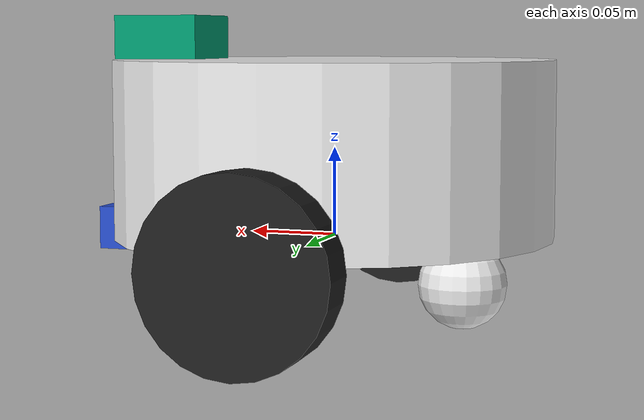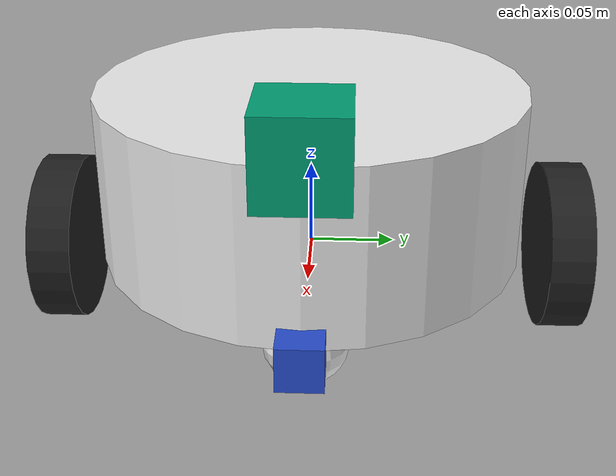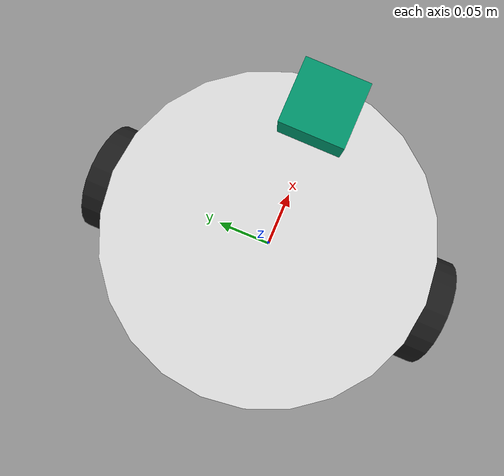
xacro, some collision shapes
<?xml version='1.0'?>

<robot name="tea" xmlns:xacro="http://www.ros.org/wiki/xacro">

  <xacro:include filename="$(find tea)/urdf/tea.gazebo" />

  <gazebo reference="left_wheel">
    <material>Gazebo/Black</material>
  </gazebo>

  <gazebo reference="right_wheel">
    <material>Gazebo/Black</material>
  </gazebo>

  <gazebo reference="camera">
    <material>Gazebo/Blue</material>
  </gazebo>

  <gazebo reference="chassis">
    <material>Gazebo/White</material>
  </gazebo>
  <link name="robot_footprint"></link>

  <joint name="robot_footprint_joint" type="fixed">
    <origin xyz="0 0 0" rpy="0 0 0" />
    <parent link="robot_footprint"/>
    <child link="chassis" />
  </joint>

  <joint name="camera_joint" type="fixed">
    <origin xyz="0.13 0 0" rpy="0 0 0" />
    <parent link="chassis"/>
    <child link="camera" />
    <axis xyz="0 1 0"/>
  </joint>

  <joint name="hokuyo_joint" type="fixed">
    <origin xyz="0.1 0 0.1" rpy="0 0 0" />
    <parent link="chassis"/>
    <child link="hokuyo" />
    <axis xyz="0 1 0"/>
  </joint>

  <joint type="continuous" name="left_wheel_hinge">
    <origin xyz="0 0.15 0" rpy="0 0 0" />
    <parent link="chassis"/>
    <child link="left_wheel" />
    <axis xyz="0 1 0" rpy="0 0 0" />
    <limit effort="10000" velocity="1000" />
    <dynamics damping="1.0" friction="1.0" />
  </joint>

  <joint type="continuous" name="right_wheel_hinge">
    <origin xyz="0 -0.15 0" rpy="0 0 0" />
    <parent link="chassis"/>
    <child link="right_wheel" />
    <axis xyz="0 1 0" rpy="0 0 0" />
    <limit effort="10000" velocity="1000" />
    <dynamics damping="1.0" friction="1.0" />
  </joint>
<link name="camera">
    <inertial>
      <mass value="0.1"/>
      <origin xyz="0 0 0" rpy="0 0 0"/>
      <inertia
        ixx="1e-6" ixy="0.0" ixz="0.0"
        iyy="1e-6" iyz="0.0"
        izz="1e-6"
      />
    </inertial>

    <collision>
      <origin xyz="0 0 0" rpy="0 0 0"/>
      <geometry>
        <box size="0.025 0.025 0.025"/>
      </geometry>
    </collision>

    <visual>
      <origin xyz="0 0 0" rpy="0 0 0"/>
      <geometry>
        <box size="0.025 0.025 0.025"/>
      </geometry>
    </visual>

  </link>

  <link name="hokuyo">
    <inertial>
      <mass value="1e-5"/>
      <origin xyz="0 0 0" rpy="0 0 0"/>
      <inertia
        ixx="1e-6" ixy="0.0" ixz="0.0"
        iyy="1e-6" iyz="0.0"
        izz="1e-6"
      />
    </inertial>

    <collision>
      <origin xyz="0 0 0" rpy="0 0 0"/>
      <geometry>
        <box size="0.05 0.05 0.05"/>
      </geometry>
    </collision>

    <visual>
      <origin xyz="0 0 0" rpy="0 0 0"/>
      <geometry>
        <mesh filename="package://tea/meshes/hokuyo.dae"/>
      </geometry>
    </visual>

  </link>

  <link name="left_wheel">
    <inertial>
      <mass value="5"/>
      <origin xyz="0 0 0" rpy="0 1.5707 1.5707"/>
      <inertia
        ixx="0.1" ixy="0.0" ixz="0.0"
        iyy="0.1" iyz="0.0"
        izz="0.1"
      />
    </inertial>

    <collision>
      <origin xyz="0 0 0" rpy="0 1.5707 1.5707"/>
      <geometry>
        <cylinder radius="0.05" length="0.025"/>
      </geometry>
    </collision>

    <visual>
      <origin xyz="0 0 0" rpy="0 1.5707 1.5707"/>
      <geometry>
        <cylinder radius="0.05" length="0.025"/>
      </geometry>
    </visual>

  </link>

  <link name="right_wheel">
    <inertial>
      <mass value="5"/>
      <origin xyz="0 0 0" rpy="0 1.5707 1.5707"/>
      <inertia
        ixx="0.1" ixy="0.0" ixz="0.0"
        iyy="0.1" iyz="0.0"
        izz="0.1"
      />
    </inertial>

    <collision>
      <origin xyz="0 0 0" rpy="0 1.5707 1.5707"/>
      <geometry>
        <cylinder radius="0.05" length="0.025"/>
      </geometry>
    </collision>

    <visual>
      <origin xyz="0 0 0" rpy="0 1.5707 1.5707"/>
      <geometry>
        <cylinder radius="0.05" length="0.025"/>
      </geometry>
    </visual>

  </link>

  <link name='chassis'>
    <pose>0 0 0.1 0 0 0</pose>

    <inertial>
      <mass value="15.0"/>
      <origin xyz="0.0 0 0" rpy=" 0 0 0"/>
      <inertia
          ixx="0.1" ixy="0" ixz="0"
          iyy="0.1" iyz="0"
          izz="0.1"
      />
    </inertial>

    <collision name='collision'>
      <origin xyz="0 0 0.05" rpy=" 0 0 0"/>
      <geometry>
        <cylinder length="0.1" radius="0.125"/>
      </geometry>
    </collision>

    <visual name='chassis_visual'>
      <origin xyz="0 0 0.05" rpy=" 0 0 0"/>
      <geometry>
       <cylinder length="0.1" radius="0.125"/>
      </geometry>
    </visual>

    <collision name='back_caster_collision'>
      <origin xyz="-0.075 0 -0.025" rpy=" 0 0 0"/>
      <geometry>
        <sphere radius="0.0249"/>
      </geometry>
    </collision>

    <visual name='back_caster_visual'>
      <origin xyz="-0.075 0 -0.025" rpy=" 0 0 0"/>
      <geometry>
        <sphere radius="0.025"/>
      </geometry>
    </visual>

    <collision name='front_caster_collision'>
      <origin xyz="0.075 0 -0.025" rpy=" 0 0 0"/>
      <geometry>
        <sphere radius="0.0249"/>
      </geometry>
    </collision>

    <visual name='front_caster_visual'>
      <origin xyz="0.075 0 -0.025" rpy=" 0 0 0"/>
      <geometry>
        <sphere radius="0.0249"/>
      </geometry>
    </visual>

  </link>

</robot>
